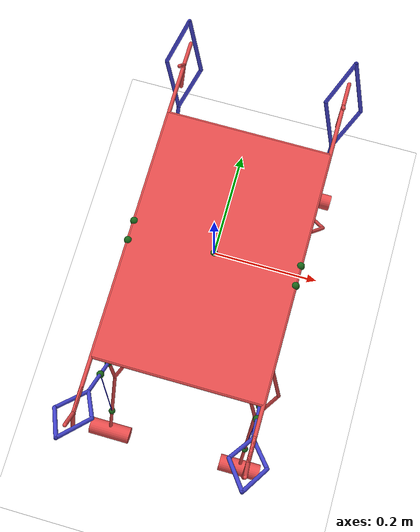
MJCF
<?xml version="1.0" ?> <!--Some files output by this program have been modified. I have added comments to the modified lines.-->
<mujoco>
	<sensor>
		<framezaxis name="QuadSegrity1_framezaxis" objtype="site" objname="QuadSegrity1_sensors"/>
		<actuatorfrc name="QuadSegrity1_rl_humerus_hip_flexor" actuator="QuadSegrity1_rl_humerus_hip_flexor"/>
		<actuatorfrc name="QuadSegrity1_rl_radius_hip_flexor" actuator="QuadSegrity1_rl_radius_hip_flexor"/>
		<actuatorfrc name="QuadSegrity1_fl_humerus_hip_flexor" actuator="QuadSegrity1_fl_humerus_hip_flexor"/>
		<actuatorfrc name="QuadSegrity1_fl_radius_hip_flexor" actuator="QuadSegrity1_fl_radius_hip_flexor"/>
		<actuatorfrc name="QuadSegrity1_rr_humerus_hip_flexor" actuator="QuadSegrity1_rr_humerus_hip_flexor"/>
		<actuatorfrc name="QuadSegrity1_rr_radius_hip_flexor" actuator="QuadSegrity1_rr_radius_hip_flexor"/>
		<actuatorfrc name="QuadSegrity1_fr_humerus_hip_flexor" actuator="QuadSegrity1_fr_humerus_hip_flexor"/>
		<actuatorfrc name="QuadSegrity1_fr_radius_hip_flexor" actuator="QuadSegrity1_fr_radius_hip_flexor"/>
	</sensor>
	<sensor/>
	<actuator>
		<muscle name="QuadSegrity1_rl_humerus_hip_flexor" tendon="QuadSegrity1_rl_humerus_hip_flexor" ctrllimited="false" forcelimited="false" lengthrange="0.33 0.6" force="60" scale="200" range="0.8 1.2"/> <!--change "lengthrange="-10 10" force="40""-->
		<muscle name="QuadSegrity1_rl_radius_hip_flexor" tendon="QuadSegrity1_rl_radius_hip_flexor" ctrllimited="false" forcelimited="false" lengthrange="0.24 0.7" force="60" scale="200" range="0.8 1.2"/> <!--change "lengthrange="-10 10" force="40""-->
		<muscle name="QuadSegrity1_fl_humerus_hip_flexor" tendon="QuadSegrity1_fl_humerus_hip_flexor" ctrllimited="false" forcelimited="false" lengthrange="0.33 0.6" force="60" scale="200" range="0.8 1.2"/> <!--change "lengthrange="-10 10" force="40""-->
		<muscle name="QuadSegrity1_fl_radius_hip_flexor" tendon="QuadSegrity1_fl_radius_hip_flexor" ctrllimited="false" forcelimited="false" lengthrange="0.24 0.7" force="60" scale="200" range="0.8 1.2"/> <!--change "lengthrange="-10 10" force="40""-->
		<muscle name="QuadSegrity1_rr_humerus_hip_flexor" tendon="QuadSegrity1_rr_humerus_hip_flexor" ctrllimited="false" forcelimited="false" lengthrange="0.33 0.6" force="60" scale="200" range="0.8 1.2"/> <!--change "lengthrange="-10 10" force="40""-->
		<muscle name="QuadSegrity1_rr_radius_hip_flexor" tendon="QuadSegrity1_rr_radius_hip_flexor" ctrllimited="false" forcelimited="false" lengthrange="0.24 0.7" force="60" scale="200" range="0.8 1.2"/> <!--change "lengthrange="-10 10" force="40""-->
		<muscle name="QuadSegrity1_fr_humerus_hip_flexor" tendon="QuadSegrity1_fr_humerus_hip_flexor" ctrllimited="false" forcelimited="false" lengthrange="0.33 0.6" force="60" scale="200" range="0.8 1.2"/> <!--change "lengthrange="-10 10" force="40""-->
		<muscle name="QuadSegrity1_fr_radius_hip_flexor" tendon="QuadSegrity1_fr_radius_hip_flexor" ctrllimited="false" forcelimited="false" lengthrange="0.24 0.7" force="60" scale="200" range="0.8 1.2"/> <!--change "lengthrange="-10 10" force="40""-->
	</actuator>
	<tendon>
		<spatial limited="false" name="QuadSegrity1_rl_humerus_hip_flexor" range="-0.01 0.01" width="0.001" rgba="0.05 0.05 0.8 1" stiffness="0" damping="1">
			<site site="QuadSegrity1_rl_humerus_0"/>
			<site site="QuadSegrity1_rl_humerus_1"/>
		</spatial>
		<spatial limited="false" name="QuadSegrity1_rl_radius_hip_flexor" range="-0.01 0.01" width="0.001" rgba="0.05 0.05 0.8 1" stiffness="0" damping="1">
			<site site="QuadSegrity1_rl_radius_0"/>
			<site site="QuadSegrity1_rl_radius_1"/>
		</spatial>
		<spatial limited="false" name="QuadSegrity1_fl_humerus_hip_flexor" range="-0.01 0.01" width="0.001" rgba="0.05 0.05 0.8 1" stiffness="0" damping="1">
			<site site="QuadSegrity1_fl_humerus_0"/>
			<site site="QuadSegrity1_fl_humerus_1"/>
		</spatial>
		<spatial limited="false" name="QuadSegrity1_fl_radius_hip_flexor" range="-0.01 0.01" width="0.001" rgba="0.05 0.05 0.8 1" stiffness="0" damping="1">
			<site site="QuadSegrity1_fl_radius_0"/>
			<site site="QuadSegrity1_fl_radius_1"/>
		</spatial>
		<spatial limited="false" name="QuadSegrity1_rr_humerus_hip_flexor" range="-0.01 0.01" width="0.001" rgba="0.05 0.05 0.8 1" stiffness="0" damping="1">
			<site site="QuadSegrity1_rr_humerus_0"/>
			<site site="QuadSegrity1_rr_humerus_1"/>
		</spatial>
		<spatial limited="false" name="QuadSegrity1_rr_radius_hip_flexor" range="-0.01 0.01" width="0.001" rgba="0.05 0.05 0.8 1" stiffness="0" damping="1">
			<site site="QuadSegrity1_rr_radius_0"/>
			<site site="QuadSegrity1_rr_radius_1"/>
		</spatial>
		<spatial limited="false" name="QuadSegrity1_fr_humerus_hip_flexor" range="-0.01 0.01" width="0.001" rgba="0.05 0.05 0.8 1" stiffness="0" damping="1">
			<site site="QuadSegrity1_fr_humerus_0"/>
			<site site="QuadSegrity1_fr_humerus_1"/>
		</spatial>
		<spatial limited="false" name="QuadSegrity1_fr_radius_hip_flexor" range="-0.01 0.01" width="0.001" rgba="0.05 0.05 0.8 1" stiffness="0" damping="1">
			<site site="QuadSegrity1_fr_radius_0"/>
			<site site="QuadSegrity1_fr_radius_1"/>
		</spatial>
	</tendon>
	<statistic extent="0.4" center="0.2 0 -0.2"/>
	<visual>
		<global fovy="90" azimuth="180" elevation="0"/>
		<headlight ambient="0.3 0.3 0.3"/>
		<rgba haze="1 1 1 1"/>
	</visual>
	<option timestep="0.001" iterations="50" integrator="RK4" tolerance="1e-10" gravity="0 0 -9.81" viscosity="0.2" density="1.2"/>
	<default>
		<joint type="ball"/>
		<muscle ctrllimited="true" ctrlrange="-1000 1000"/>
		<geom size="0.004" density="2000" rgba="0.3 0.3 0.3 1"/>
		<site size="0.008" rgba="0.1 0.4 0.1 1"/>
	</default>
	<asset>
		<texture name="texplane" type="2d" builtin="checker" rgb1=".25 .25 .25" rgb2=".28 .28 .28" width="512" height="512" markrgb=".8 .8 .8"/>
		<texture name="skybox" type="skybox" builtin="gradient" rgb1="1 1 1" rgb2="1 1 1" width="800" height="800" mark="none" markrgb="1 1 1"/>
		<material name="matplane" reflectance="0" texture="texplane" texrepeat="5 5" texuniform="true"/>
	</asset>
	<worldbody>
		<geom name="floor" rgba="1 1 1 1" pos="0 0 -0.7" size="0 0 1" type="plane" material="matplane"/>
		<light directional="true" castshadow="false" diffuse=".8 .8 .8" specular=".2 .2 .2" pos="0 0 5" dir="0 0 -1"/>
		<body pos="0 0 0" name="QuadSegrity1">
			<joint type="free"/>
			<site name="QuadSegrity1_sensors" pos="0 0 0" zaxis="0 0 -1"/>
			<geom type="capsule" rgba="0.9 0.3 0.3 1" fromto="0.165 0.36 0.0 0.165 0.335 0.04330127018922194"/>
			<geom type="capsule" rgba="0.9 0.3 0.3 1" fromto="0.165 0.36 0.0 0.165 0.335 -0.04330127018922194"/>
			<geom type="capsule" rgba="0.9 0.3 0.3 1" fromto="0.165 0.36 0.0 0.165 0.41 0.0"/>
			<body pos="0.165 0.36 0.0" name="QuadSegrity1_rl_humerus" euler="-119.99999999999999 0 0">
				<joint type="hinge" axis="1 0 0" stiffness="9.4" damping="0.1"/><!--stiffness="4.4"-->
				<joint type="hinge" axis="0 0 1" stiffness="12" damping="0.1"/><!--stiffness="10"-->
				<geom type="capsule" rgba="0.3 0.3 0.9 1" fromto="0.0 0.1 0.0 0.0358 0.0 0.0"/>
				<geom type="capsule" rgba="0.3 0.3 0.9 1" fromto="0.0 0.1 0.0 -0.0358 0.0 0.0"/>
				<geom type="capsule" rgba="0.3 0.3 0.9 1" fromto="0.0 0.1 0.0 0.0 0.3265 0.0"/>
				<geom type="capsule" rgba="0.3 0.3 0.9 1" fromto="0.0358 0.0 0.0 0.0 -0.1 0.0"/>
				<geom type="capsule" rgba="0.3 0.3 0.9 1" fromto="-0.0358 0.0 0.0 0.0 -0.1 0.0"/>
				<site name="QuadSegrity1_rl_humerus_0" pos="0.0 0.25 0.0" zaxis="0 0 1"/>
				<geom type="capsule" rgba="0.3 0.3 0.9 1" fromto="0.0 0.3265 0.0 0.0 0.3515 -0.04330127018922194"/>
				<geom type="capsule" rgba="0.3 0.3 0.9 1" fromto="0.0 0.3265 0.0 0.0 0.3515 0.04330127018922194"/>
				<geom type="capsule" rgba="0.3 0.3 0.9 1" fromto="0.0 0.3265 0.0 0.0 0.2765 0.0"/>
				<body pos="0.0 0.3265 0.0" name="QuadSegrity1_rl_radius" euler="-119.99999999999999 0 0">
					<joint type="hinge" axis="1 0 0" stiffness="9.4" damping="0.1"/><!--stiffness="4.4"-->
					<joint type="hinge" axis="0 0 1" stiffness="12" damping="0.1"/><!--stiffness="10"-->
					<geom type="capsule" rgba="0.9 0.3 0.3 1" fromto="0.0 -0.1 0.0 0.0358 0.0 0.0"/>
					<geom type="capsule" rgba="0.9 0.3 0.3 1" fromto="0.0 -0.1 0.0 -0.0358 0.0 0.0"/>
					<geom type="capsule" rgba="0.9 0.3 0.3 1" fromto="0.0 -0.1 0.0 0.0 -0.3265 0.0"/>
					<geom type="capsule" rgba="0.9 0.3 0.3 1" fromto="0.0358 0.0 0.0 0.0 0.1 0.0"/>
					<geom type="capsule" rgba="0.9 0.3 0.3 1" fromto="-0.0358 0.0 0.0 0.0 0.1 0.0"/>
					<site name="QuadSegrity1_rl_radius_0" pos="0.0 -0.24 0.0" zaxis="0 0 1"/>
					<geom type="cylinder" pos="0 -0.3265 0" friction="1 0.005 0.0001" size="0.02 0.05" euler="0 90 0" rgba="0.9 0.3 0.3 1"/>
				</body>
				<site name="QuadSegrity1_rl_radius_1" pos="0.0 0.1865 0.0" zaxis="0 0 1"/>
			</body>
			<site name="QuadSegrity1_rl_humerus_1" pos="0.165 0.02 0.0" zaxis="0 0 1"/>
			<geom type="capsule" rgba="0.9 0.3 0.3 1" fromto="0.165 -0.36 0.0 0.165 -0.38499999999999995 0.04330127018922194"/>
			<geom type="capsule" rgba="0.9 0.3 0.3 1" fromto="0.165 -0.36 0.0 0.165 -0.38499999999999995 -0.04330127018922194"/>
			<geom type="capsule" rgba="0.9 0.3 0.3 1" fromto="0.165 -0.36 0.0 0.165 -0.31 0.0"/>
			<body pos="0.165 -0.36 0.0" name="QuadSegrity1_fl_humerus" euler="-59.99999999999999 0 0">
				<joint type="hinge" axis="1 0 0" stiffness="9.4" damping="0.1"/><!--stiffness="4.4"-->
				<joint type="hinge" axis="0 0 1" stiffness="12" damping="0.1"/><!--stiffness="10"-->
				<geom type="capsule" rgba="0.3 0.3 0.9 1" fromto="0.0 0.1 0.0 0.0358 0.0 0.0"/>
				<geom type="capsule" rgba="0.3 0.3 0.9 1" fromto="0.0 0.1 0.0 -0.0358 0.0 0.0"/>
				<geom type="capsule" rgba="0.3 0.3 0.9 1" fromto="0.0 0.1 0.0 0.0 0.3265 0.0"/>
				<geom type="capsule" rgba="0.3 0.3 0.9 1" fromto="0.0358 0.0 0.0 0.0 -0.1 0.0"/>
				<geom type="capsule" rgba="0.3 0.3 0.9 1" fromto="-0.0358 0.0 0.0 0.0 -0.1 0.0"/>
				<site name="QuadSegrity1_fl_humerus_0" pos="0.0 0.25 0.0" zaxis="0 0 1"/>
				<geom type="capsule" rgba="0.3 0.3 0.9 1" fromto="0.0 0.3265 0.0 0.0 0.3515 -0.04330127018922194"/>
				<geom type="capsule" rgba="0.3 0.3 0.9 1" fromto="0.0 0.3265 0.0 0.0 0.3515 0.04330127018922194"/>
				<geom type="capsule" rgba="0.3 0.3 0.9 1" fromto="0.0 0.3265 0.0 0.0 0.2765 0.0"/>
				<body pos="0.0 0.3265 0.0" name="QuadSegrity1_fl_radius" euler="119.99999999999999 0 0">
					<joint type="hinge" axis="1 0 0" stiffness="9.4" damping="0.1"/><!--stiffness="4.4"-->
					<joint type="hinge" axis="0 0 1" stiffness="12" damping="0.1"/><!--stiffness="10"-->
					<geom type="capsule" rgba="0.9 0.3 0.3 1" fromto="0.0 -0.1 0.0 0.0358 0.0 0.0"/>
					<geom type="capsule" rgba="0.9 0.3 0.3 1" fromto="0.0 -0.1 0.0 -0.0358 0.0 0.0"/>
					<geom type="capsule" rgba="0.9 0.3 0.3 1" fromto="0.0 -0.1 0.0 0.0 -0.3265 0.0"/>
					<geom type="capsule" rgba="0.9 0.3 0.3 1" fromto="0.0358 0.0 0.0 0.0 0.1 0.0"/>
					<geom type="capsule" rgba="0.9 0.3 0.3 1" fromto="-0.0358 0.0 0.0 0.0 0.1 0.0"/>
					<site name="QuadSegrity1_fl_radius_0" pos="0.0 -0.24 0.0" zaxis="0 0 1"/>
					<geom type="cylinder" pos="0 -0.3265 0" friction="1 0.005 0.0001" size="0.02 0.05" euler="0 90 0" rgba="0.9 0.3 0.3 1"/>
				</body>
				<site name="QuadSegrity1_fl_radius_1" pos="0.0 0.1865 0.0" zaxis="0 0 1"/>
			</body>
			<site name="QuadSegrity1_fl_humerus_1" pos="0.165 -0.02 0.0" zaxis="0 0 1"/>
			<geom type="capsule" rgba="0.9 0.3 0.3 1" fromto="-0.165 0.36 0.0 -0.165 0.335 0.04330127018922194"/>
			<geom type="capsule" rgba="0.9 0.3 0.3 1" fromto="-0.165 0.36 0.0 -0.165 0.335 -0.04330127018922194"/>
			<geom type="capsule" rgba="0.9 0.3 0.3 1" fromto="-0.165 0.36 0.0 -0.165 0.41 0.0"/>
			<body pos="-0.165 0.36 0.0" name="QuadSegrity1_rr_humerus" euler="-119.99999999999999 0 0">
				<joint type="hinge" axis="1 0 0" stiffness="9.4" damping="0.1"/><!--stiffness="4.4"-->
				<joint type="hinge" axis="0 0 1" stiffness="12" damping="0.1"/><!--stiffness="10"-->
				<geom type="capsule" rgba="0.3 0.3 0.9 1" fromto="0.0 0.1 0.0 0.0358 0.0 0.0"/>
				<geom type="capsule" rgba="0.3 0.3 0.9 1" fromto="0.0 0.1 0.0 -0.0358 0.0 0.0"/>
				<geom type="capsule" rgba="0.3 0.3 0.9 1" fromto="0.0 0.1 0.0 0.0 0.3265 0.0"/>
				<geom type="capsule" rgba="0.3 0.3 0.9 1" fromto="0.0358 0.0 0.0 0.0 -0.1 0.0"/>
				<geom type="capsule" rgba="0.3 0.3 0.9 1" fromto="-0.0358 0.0 0.0 0.0 -0.1 0.0"/>
				<site name="QuadSegrity1_rr_humerus_0" pos="0.0 0.25 0.0" zaxis="0 0 1"/>
				<geom type="capsule" rgba="0.3 0.3 0.9 1" fromto="0.0 0.3265 0.0 0.0 0.3515 -0.04330127018922194"/>
				<geom type="capsule" rgba="0.3 0.3 0.9 1" fromto="0.0 0.3265 0.0 0.0 0.3515 0.04330127018922194"/>
				<geom type="capsule" rgba="0.3 0.3 0.9 1" fromto="0.0 0.3265 0.0 0.0 0.2765 0.0"/>
				<body pos="0.0 0.3265 0.0" name="QuadSegrity1_rr_radius" euler="-119.99999999999999 0 0">
					<joint type="hinge" axis="1 0 0" stiffness="9.4" damping="0.1"/><!--stiffness="4.4"-->
					<joint type="hinge" axis="0 0 1" stiffness="12" damping="0.1"/><!--stiffness="10"-->
					<geom type="capsule" rgba="0.9 0.3 0.3 1" fromto="0.0 -0.1 0.0 0.0358 0.0 0.0"/>
					<geom type="capsule" rgba="0.9 0.3 0.3 1" fromto="0.0 -0.1 0.0 -0.0358 0.0 0.0"/>
					<geom type="capsule" rgba="0.9 0.3 0.3 1" fromto="0.0 -0.1 0.0 0.0 -0.3265 0.0"/>
					<geom type="capsule" rgba="0.9 0.3 0.3 1" fromto="0.0358 0.0 0.0 0.0 0.1 0.0"/>
					<geom type="capsule" rgba="0.9 0.3 0.3 1" fromto="-0.0358 0.0 0.0 0.0 0.1 0.0"/>
					<site name="QuadSegrity1_rr_radius_0" pos="0.0 -0.24 0.0" zaxis="0 0 1"/>
					<geom type="cylinder" pos="0 -0.3265 0" friction="1 0.005 0.0001" size="0.02 0.05" euler="0 90 0" rgba="0.9 0.3 0.3 1"/>
				</body>
				<site name="QuadSegrity1_rr_radius_1" pos="0.0 0.1865 0.0" zaxis="0 0 1"/>
			</body>
			<site name="QuadSegrity1_rr_humerus_1" pos="-0.165 0.02 0.0" zaxis="0 0 1"/>
			<geom type="capsule" rgba="0.9 0.3 0.3 1" fromto="-0.165 -0.36 0.0 -0.165 -0.38499999999999995 0.04330127018922194"/>
			<geom type="capsule" rgba="0.9 0.3 0.3 1" fromto="-0.165 -0.36 0.0 -0.165 -0.38499999999999995 -0.04330127018922194"/>
			<geom type="capsule" rgba="0.9 0.3 0.3 1" fromto="-0.165 -0.36 0.0 -0.165 -0.31 0.0"/>
			<body pos="-0.165 -0.36 0.0" name="QuadSegrity1_fr_humerus" euler="-59.99999999999999 0 0">
				<joint type="hinge" axis="1 0 0" stiffness="9.4" damping="0.1"/><!--stiffness="4.4"-->
				<joint type="hinge" axis="0 0 1" stiffness="12" damping="0.1"/><!--stiffness="10"-->
				<geom type="capsule" rgba="0.3 0.3 0.9 1" fromto="0.0 0.1 0.0 0.0358 0.0 0.0"/>
				<geom type="capsule" rgba="0.3 0.3 0.9 1" fromto="0.0 0.1 0.0 -0.0358 0.0 0.0"/>
				<geom type="capsule" rgba="0.3 0.3 0.9 1" fromto="0.0 0.1 0.0 0.0 0.3265 0.0"/>
				<geom type="capsule" rgba="0.3 0.3 0.9 1" fromto="0.0358 0.0 0.0 0.0 -0.1 0.0"/>
				<geom type="capsule" rgba="0.3 0.3 0.9 1" fromto="-0.0358 0.0 0.0 0.0 -0.1 0.0"/>
				<site name="QuadSegrity1_fr_humerus_0" pos="0.0 0.25 0.0" zaxis="0 0 1"/>
				<geom type="capsule" rgba="0.3 0.3 0.9 1" fromto="0.0 0.3265 0.0 0.0 0.3515 -0.04330127018922194"/>
				<geom type="capsule" rgba="0.3 0.3 0.9 1" fromto="0.0 0.3265 0.0 0.0 0.3515 0.04330127018922194"/>
				<geom type="capsule" rgba="0.3 0.3 0.9 1" fromto="0.0 0.3265 0.0 0.0 0.2765 0.0"/>
				<body pos="0.0 0.3265 0.0" name="QuadSegrity1_fr_radius" euler="119.99999999999999 0 0">
					<joint type="hinge" axis="1 0 0" stiffness="9.4" damping="0.1"/><!--stiffness="4.4"-->
					<joint type="hinge" axis="0 0 1" stiffness="12" damping="0.1"/><!--stiffness="10"-->
					<geom type="capsule" rgba="0.9 0.3 0.3 1" fromto="0.0 -0.1 0.0 0.0358 0.0 0.0"/>
					<geom type="capsule" rgba="0.9 0.3 0.3 1" fromto="0.0 -0.1 0.0 -0.0358 0.0 0.0"/>
					<geom type="capsule" rgba="0.9 0.3 0.3 1" fromto="0.0 -0.1 0.0 0.0 -0.3265 0.0"/>
					<geom type="capsule" rgba="0.9 0.3 0.3 1" fromto="0.0358 0.0 0.0 0.0 0.1 0.0"/>
					<geom type="capsule" rgba="0.9 0.3 0.3 1" fromto="-0.0358 0.0 0.0 0.0 0.1 0.0"/>
					<site name="QuadSegrity1_fr_radius_0" pos="0.0 -0.24 0.0" zaxis="0 0 1"/>
					<geom type="cylinder" pos="0 -0.3265 0" friction="1 0.005 0.0001" size="0.02 0.05" euler="0 90 0" rgba="0.9 0.3 0.3 1"/>
				</body>
				<site name="QuadSegrity1_fr_radius_1" pos="0.0 0.1865 0.0" zaxis="0 0 1"/>
			</body>
			<site name="QuadSegrity1_fr_humerus_1" pos="-0.165 -0.02 0.0" zaxis="0 0 1"/>
			<geom type="box" mass="1.5" rgba="0.9 0.3 0.3 1" size="0.165 0.252 0.004"/>
			<geom type="capsule" rgba="0.9 0.3 0.3 1" fromto="-0.165 -0.36 0 -0.165 0.36 0"/>
			<geom type="capsule" rgba="0.9 0.3 0.3 1" fromto="0.165 -0.36 0 0.165 0.36 0"/>
			<geom type="capsule" rgba="0.9 0.3 0.3 1" fromto="-0.165 -0.252 0 0.165 -0.252 0"/>
			<geom type="capsule" rgba="0.9 0.3 0.3 1" fromto="-0.165 0.252 0 0.165 0.252 0"/>
		</body>
	</worldbody>
</mujoco>
